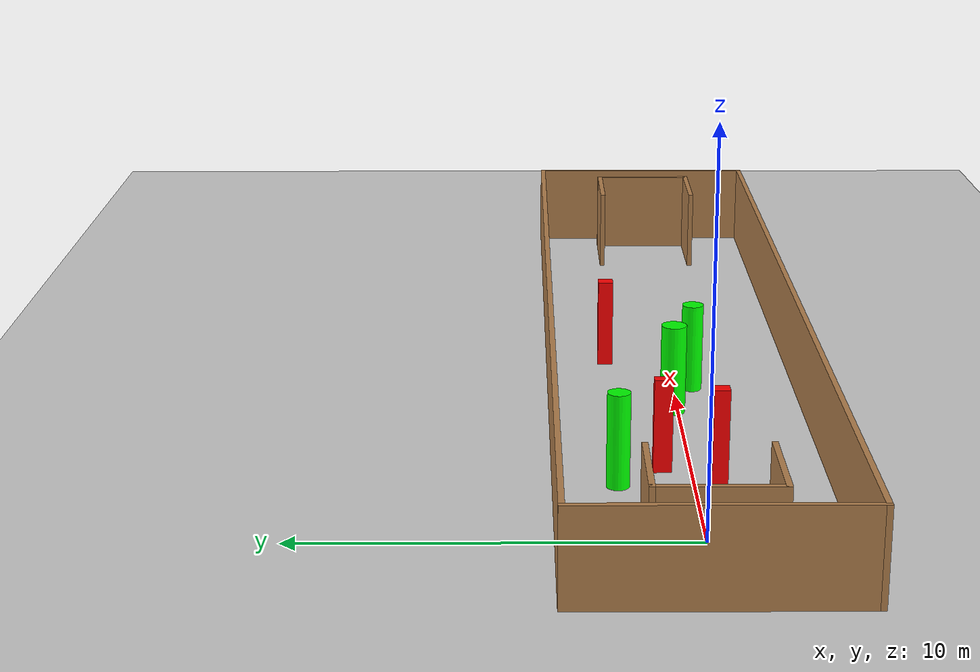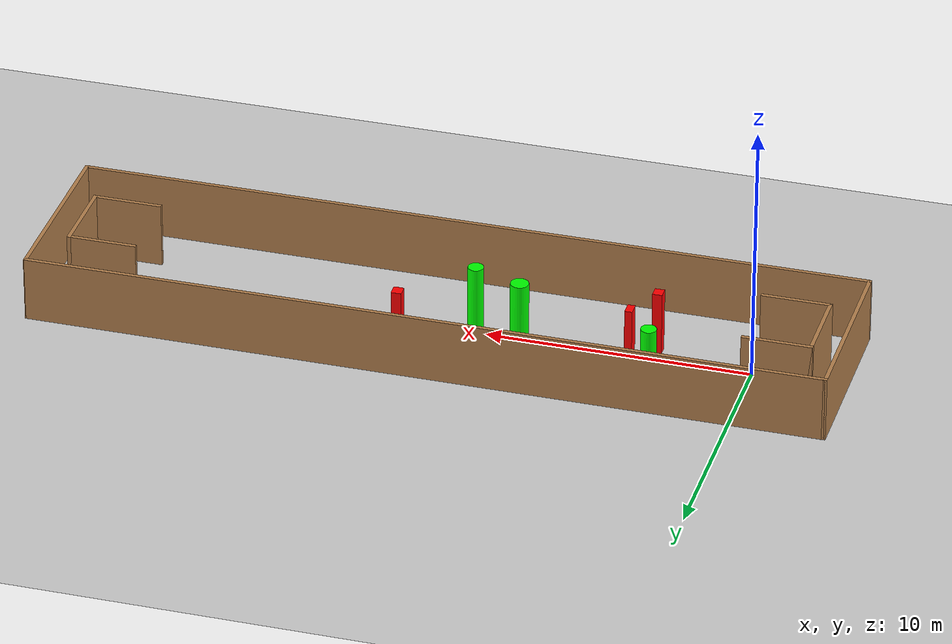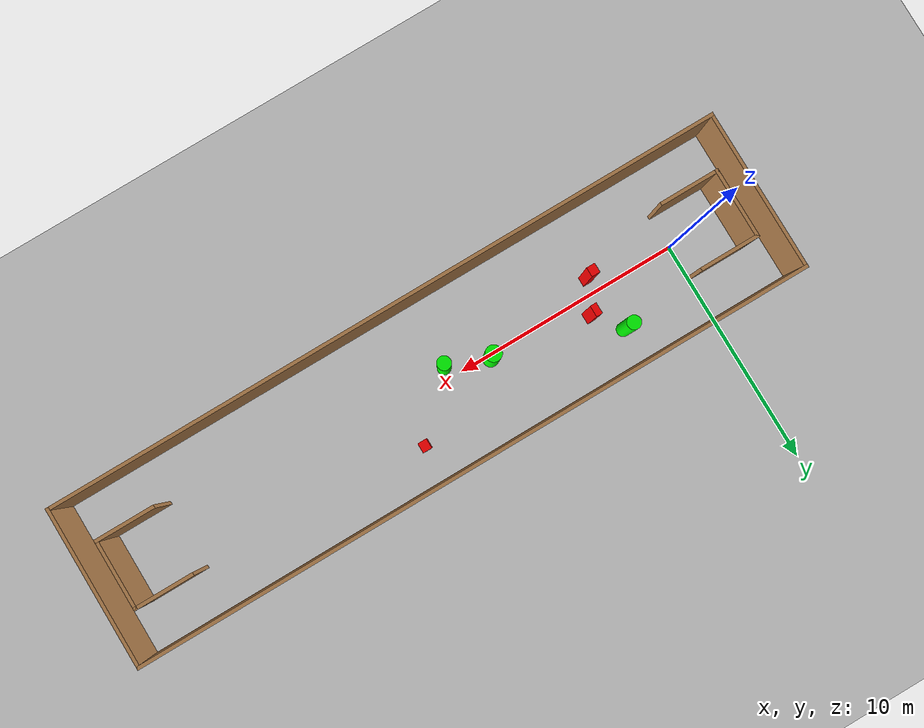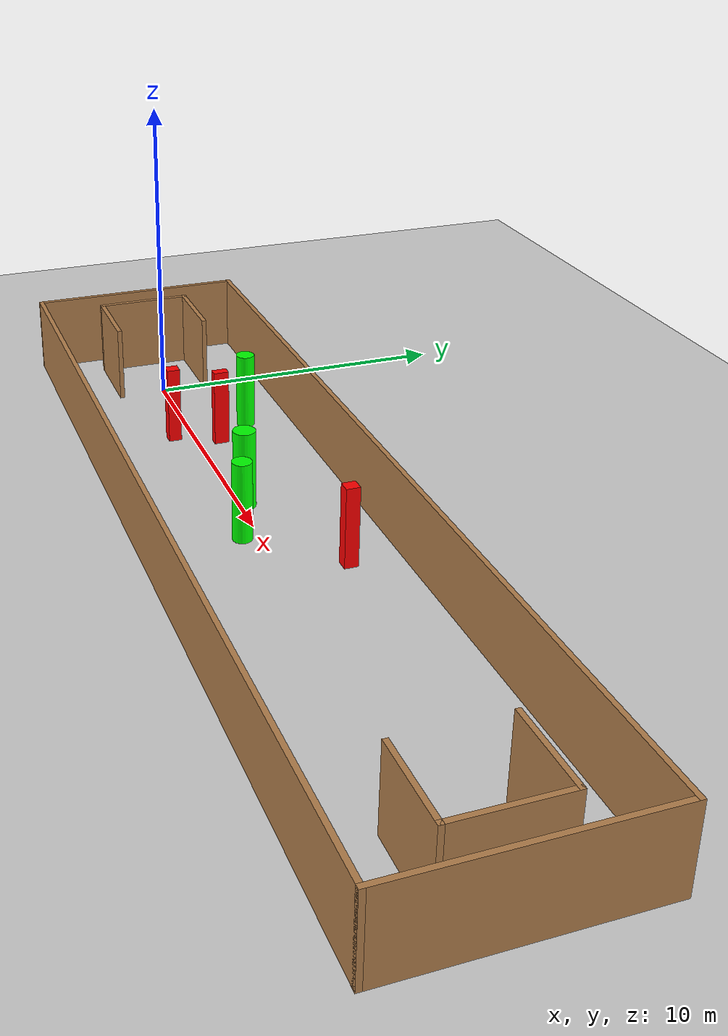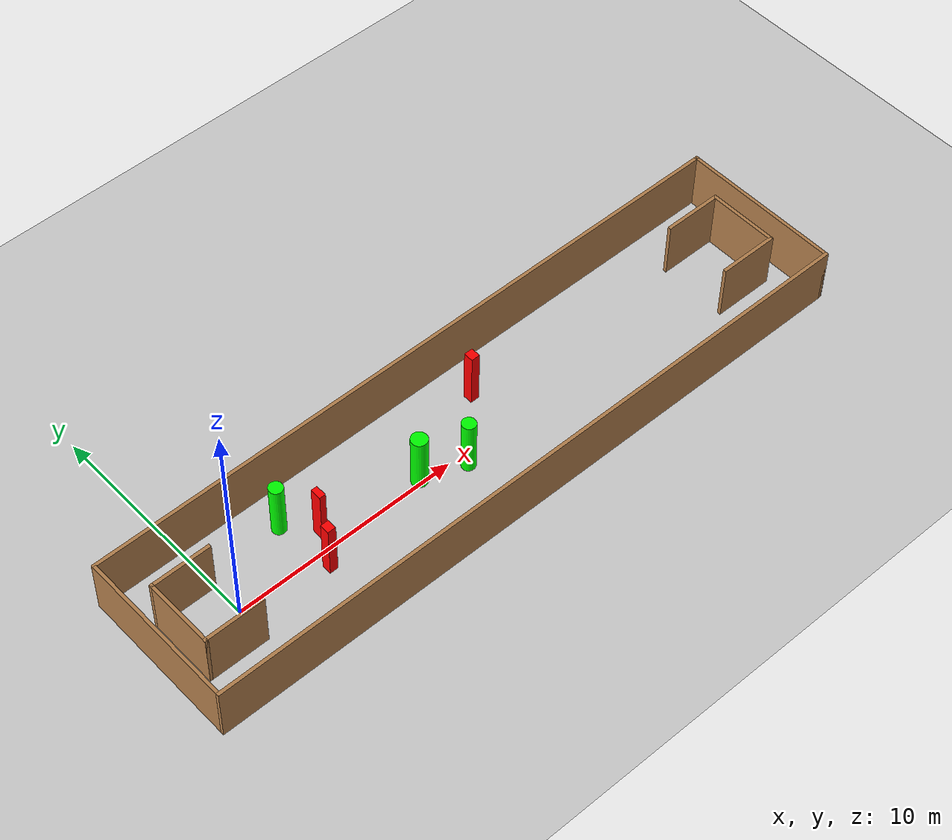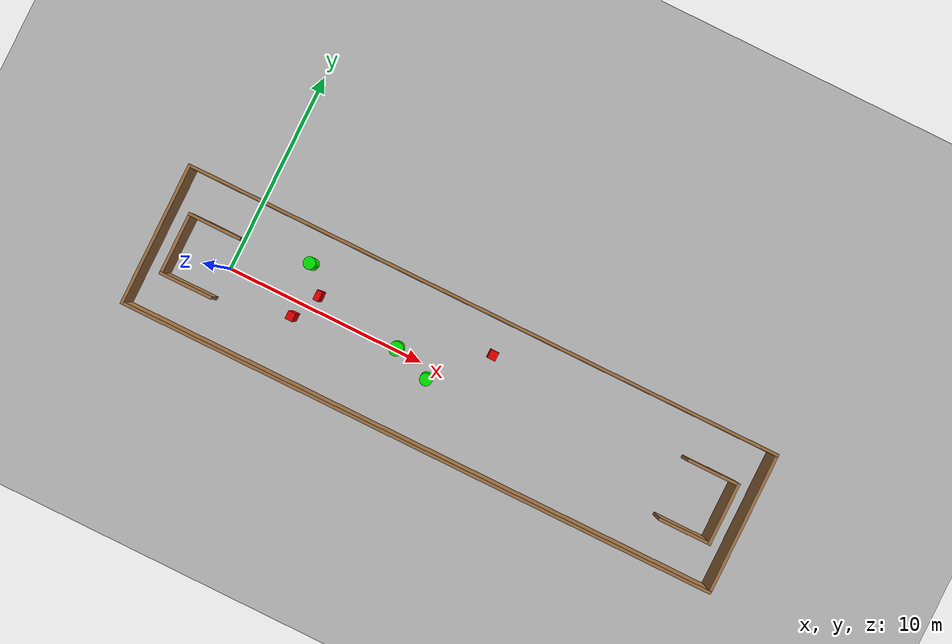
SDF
<sdf version="1.7">
 <world name="default">
  <light name="sun" type="directional">
   <pose>0 0 10 0 -0 0</pose>
   <diffuse>0.8 0.8 0.8 1</diffuse>
   <specular>0.2 0.2 0.2 1</specular>
   <attenuation>
    <range>1000</range>
    <constant>0.9</constant>
    <linear>0.01</linear>
    <quadratic>0.001</quadratic>
   </attenuation>
   <direction>-0.5 0.1 -0.9</direction>
   <spot><inner_angle>0</inner_angle><outer_angle>0</outer_angle><falloff>0</falloff></spot>
  </light>
  <model name="ground_plane">
   <static>1</static>
   <link name="link">
    <collision name="collision">
     <geometry><plane><normal>0 0 1</normal><size>100 100</size></plane></geometry>
     <surface>
      <contact><collide_bitmask>65535</collide_bitmask></contact>
      <friction><ode><mu>100</mu><mu2>50</mu2></ode></friction>
     </surface>
    </collision>
    <visual name="visual">
     <cast_shadows>0</cast_shadows>
     <geometry><plane><normal>0 0 1</normal><size>100 100</size></plane></geometry>
     <material>
      <script><uri>file://media/materials/scripts/gazebo.material</uri><name>Gazebo/Grey</name></script>
     </material>
    </visual>
   </link>
  </model>
  <gravity>0 0 -9.8</gravity>
  <magnetic_field>6e-06 2.3e-05 -4.2e-05</magnetic_field>
  <atmosphere type="adiabatic"/>
  <physics type="ode">
   <max_step_size>0.001</max_step_size>
   <real_time_factor>1</real_time_factor>
   <real_time_update_rate>1000</real_time_update_rate>
  </physics>
  <scene><ambient>0.4 0.4 0.4 1</ambient><background>0.7 0.7 0.7 1</background><shadows>1</shadows></scene>
  <spherical_coordinates>
   <surface_model>EARTH_WGS84</surface_model>
   <latitude_deg>0</latitude_deg>
   <longitude_deg>0</longitude_deg>
   <elevation>0</elevation>
   <heading_deg>0</heading_deg>
  </spherical_coordinates>
  <model name="my_base_walls">
   <link name="Wall_0">
    <collision name="Wall_0_Collision">
     <geometry><box><size>7.15 0.15 2.5</size></box></geometry>
     <pose>0 0 1.25 0 -0 0</pose>
    </collision>
    <visual name="Wall_0_Visual">
     <pose>0 0 1.25 0 -0 0</pose>
     <geometry><box><size>7.15 0.15 2.5</size></box></geometry>
     <material>
      <script><uri>file://media/materials/scripts/gazebo.material</uri><name>Gazebo/Wood</name></script>
      <ambient>1 1 1 1</ambient>
     </material>
     <meta><layer>0</layer></meta>
    </visual>
    <pose>-15 0 0 0 -0 1.5708</pose>
   </link>
   <link name="Wall_10">
    <collision name="Wall_10_Collision">
     <geometry><box><size>2.65 0.15 2.5</size></box></geometry>
     <pose>0 0 1.25 0 -0 0</pose>
    </collision>
    <visual name="Wall_10_Visual">
     <pose>0 0 1.25 0 -0 0</pose>
     <geometry><box><size>2.65 0.15 2.5</size></box></geometry>
     <material>
      <script><uri>file://media/materials/scripts/gazebo.material</uri><name>Gazebo/Wood</name></script>
      <ambient>1 1 1 1</ambient>
     </material>
     <meta><layer>0</layer></meta>
    </visual>
    <pose>-12.75 -1.5 0 0 -0 0</pose>
   </link>
   <link name="Wall_12">
    <collision name="Wall_12_Collision">
     <geometry><box><size>2.65 0.15 2.5</size></box></geometry>
     <pose>0 0 1.25 0 -0 0</pose>
    </collision>
    <visual name="Wall_12_Visual">
     <pose>0 0 1.25 0 -0 0</pose>
     <geometry><box><size>2.65 0.15 2.5</size></box></geometry>
     <material>
      <script><uri>file://media/materials/scripts/gazebo.material</uri><name>Gazebo/Wood</name></script>
      <ambient>1 1 1 1</ambient>
     </material>
     <meta><layer>0</layer></meta>
    </visual>
    <pose>-12.75 1.5 0 0 -0 0</pose>
   </link>
   <link name="Wall_14">
    <collision name="Wall_14_Collision">
     <geometry><box><size>3.15 0.15 2.5</size></box></geometry>
     <pose>0 0 1.25 0 -0 0</pose>
    </collision>
    <visual name="Wall_14_Visual">
     <pose>0 0 1.25 0 -0 0</pose>
     <geometry><box><size>3.15 0.15 2.5</size></box></geometry>
     <material>
      <script><uri>file://media/materials/scripts/gazebo.material</uri><name>Gazebo/Wood</name></script>
      <ambient>1 1 1 1</ambient>
     </material>
     <meta><layer>0</layer></meta>
    </visual>
    <pose>14 0 0 0 -0 -1.5708</pose>
   </link>
   <link name="Wall_15">
    <collision name="Wall_15_Collision">
     <geometry><box><size>2.65 0.15 2.5</size></box></geometry>
     <pose>0 0 1.25 0 -0 0</pose>
    </collision>
    <visual name="Wall_15_Visual">
     <pose>0 0 1.25 0 -0 0</pose>
     <geometry><box><size>2.65 0.15 2.5</size></box></geometry>
     <material>
      <script><uri>file://media/materials/scripts/gazebo.material</uri><name>Gazebo/Wood</name></script>
      <ambient>1 1 1 1</ambient>
     </material>
     <meta><layer>0</layer></meta>
    </visual>
    <pose>12.75 -1.5 0 0 -0 3.14159</pose>
   </link>
   <link name="Wall_17">
    <collision name="Wall_17_Collision">
     <geometry><box><size>2.65 0.15 2.5</size></box></geometry>
     <pose>0 0 1.25 0 -0 0</pose>
    </collision>
    <visual name="Wall_17_Visual">
     <pose>0 0 1.25 0 -0 0</pose>
     <geometry><box><size>2.65 0.15 2.5</size></box></geometry>
     <material>
      <script><uri>file://media/materials/scripts/gazebo.material</uri><name>Gazebo/Wood</name></script>
      <ambient>1 1 1 1</ambient>
     </material>
     <meta><layer>0</layer></meta>
    </visual>
    <pose>12.75 1.5 0 0 -0 3.14159</pose>
   </link>
   <link name="Wall_2">
    <collision name="Wall_2_Collision">
     <geometry><box><size>30.15 0.15 2.5</size></box></geometry>
     <pose>0 0 1.25 0 -0 0</pose>
    </collision>
    <visual name="Wall_2_Visual">
     <pose>0 0 1.25 0 -0 0</pose>
     <geometry><box><size>30.15 0.15 2.5</size></box></geometry>
     <material>
      <script><uri>file://media/materials/scripts/gazebo.material</uri><name>Gazebo/Wood</name></script>
      <ambient>1 1 1 1</ambient>
     </material>
     <meta><layer>0</layer></meta>
    </visual>
    <pose>-0 -3.5 0 0 -0 0</pose>
   </link>
   <link name="Wall_4">
    <collision name="Wall_4_Collision">
     <geometry><box><size>30.15 0.15 2.5</size></box></geometry>
     <pose>0 0 1.25 0 -0 0</pose>
    </collision>
    <visual name="Wall_4_Visual">
     <pose>0 0 1.25 0 -0 0</pose>
     <geometry><box><size>30.15 0.15 2.5</size></box></geometry>
     <material>
      <script><uri>file://media/materials/scripts/gazebo.material</uri><name>Gazebo/Wood</name></script>
      <ambient>1 1 1 1</ambient>
     </material>
     <meta><layer>0</layer></meta>
    </visual>
    <pose>-0 3.5 0 0 -0 0</pose>
   </link>
   <link name="Wall_6">
    <collision name="Wall_6_Collision">
     <geometry><box><size>7.15 0.15 2.5</size></box></geometry>
     <pose>0 0 1.25 0 -0 0</pose>
    </collision>
    <visual name="Wall_6_Visual">
     <pose>0 0 1.25 0 -0 0</pose>
     <geometry><box><size>7.15 0.15 2.5</size></box></geometry>
     <material>
      <script><uri>file://media/materials/scripts/gazebo.material</uri><name>Gazebo/Wood</name></script>
      <ambient>1 1 1 1</ambient>
     </material>
     <meta><layer>0</layer></meta>
    </visual>
    <pose>15 0 0 0 -0 -1.5708</pose>
   </link>
   <link name="Wall_9">
    <collision name="Wall_9_Collision">
     <geometry><box><size>3.15 0.15 2.5</size></box></geometry>
     <pose>0 0 1.25 0 -0 0</pose>
    </collision>
    <visual name="Wall_9_Visual">
     <pose>0 0 1.25 0 -0 0</pose>
     <geometry><box><size>3.15 0.15 2.5</size></box></geometry>
     <material>
      <script><uri>file://media/materials/scripts/gazebo.material</uri><name>Gazebo/Wood</name></script>
      <ambient>1 1 1 1</ambient>
     </material>
     <meta><layer>0</layer></meta>
    </visual>
    <pose>-14 0 0 0 -0 -1.5708</pose>
   </link>
   <static>1</static>
   <pose>11.5 0 0 0 -0 0</pose>
  </model>
  <model name="cylinder1">
   <static>1</static>
   <link name="link">
    <inertial>
     <mass>1</mass>
     <inertia><ixx>0.5</ixx><ixy>0</ixy><ixz>0</ixz><iyy>0.5</iyy><iyz>0</iyz><izz>1</izz></inertia>
    </inertial>
    <collision name="collision">
     <geometry><cylinder><radius>0.2973973266515352</radius><length>2.5</length></cylinder></geometry>
    </collision>
    <visual name="visual">
     <geometry><cylinder><radius>0.2973973266515352</radius><length>2.5</length></cylinder></geometry>
     <material>
      <ambient>0 1 0 1</ambient>
      <diffuse>0 1 0 1</diffuse>
      <specular>0.1 0.1 0.1 1</specular>
      <emissive>0 0 0 0</emissive>
     </material>
    </visual>
   </link>
   <pose>10.534177559851464 -0.5089106300833688 1.25 0 0 0</pose>
  </model>
  <model name="cylinder2">
   <static>1</static>
   <link name="link">
    <inertial>
     <mass>1</mass>
     <inertia><ixx>0.5</ixx><ixy>0</ixy><ixz>0</ixz><iyy>0.5</iyy><iyz>0</iyz><izz>1</izz></inertia>
    </inertial>
    <collision name="collision">
     <geometry><cylinder><radius>0.2973561895998973</radius><length>2.5</length></cylinder></geometry>
    </collision>
    <visual name="visual">
     <geometry><cylinder><radius>0.2973561895998973</radius><length>2.5</length></cylinder></geometry>
     <material>
      <ambient>0 1 0 1</ambient>
      <diffuse>0 1 0 1</diffuse>
      <specular>0.1 0.1 0.1 1</specular>
      <emissive>0 0 0 0</emissive>
     </material>
    </visual>
   </link>
   <pose>3.3936979091957493 1.9211953065213327 1.25 0 0 0</pose>
  </model>
  <model name="cylinder3">
   <static>1</static>
   <link name="link">
    <inertial>
     <mass>1</mass>
     <inertia><ixx>0.5</ixx><ixy>0</ixy><ixz>0</ixz><iyy>0.5</iyy><iyz>0</iyz><izz>1</izz></inertia>
    </inertial>
    <collision name="collision">
     <geometry><cylinder><radius>0.3463741135747091</radius><length>2.5</length></cylinder></geometry>
    </collision>
    <visual name="visual">
     <geometry><cylinder><radius>0.3463741135747091</radius><length>2.5</length></cylinder></geometry>
     <material>
      <ambient>0 1 0 1</ambient>
      <diffuse>0 1 0 1</diffuse>
      <specular>0.1 0.1 0.1 1</specular>
      <emissive>0 0 0 0</emissive>
     </material>
    </visual>
   </link>
   <pose>8.691808915730123 0.15656696475261267 1.25 0 0 0</pose>
  </model>
  <model name="box1">
   <static>1</static>
   <link name="link">
    <inertial>
     <mass>1</mass>
     <inertia><ixx>0.083</ixx><ixy>0</ixy><ixz>0</ixz><iyy>0.083</iyy><iyz>0</iyz><izz>0.083</izz></inertia>
    </inertial>
    <collision name="collision">
     <geometry><box><size>0.3865544176706607 0.4241766445535625 2.5</size></box></geometry>
    </collision>
    <visual name="visual">
     <geometry><box><size>0.3865544176706607 0.4241766445535625 2.5</size></box></geometry>
     <material>
      <ambient>1 0 0 1</ambient>
      <diffuse>1 0 0 1</diffuse>
      <specular>0.1 0.1 0.1 1</specular>
      <emissive>0 0 0 0</emissive>
     </material>
    </visual>
    <sensor name="my_contact" type="contact">
     <contact><collision>box_collision</collision><topic>__default_topic__</topic></contact>
    </sensor>
   </link>
   <pose>12.817867992394726 1.8517022135814383 1.25 0 0 0</pose>
  </model>
  <model name="box2">
   <static>1</static>
   <link name="link">
    <inertial>
     <mass>1</mass>
     <inertia><ixx>0.083</ixx><ixy>0</ixy><ixz>0</ixz><iyy>0.083</iyy><iyz>0</iyz><izz>0.083</izz></inertia>
    </inertial>
    <collision name="collision">
     <geometry><box><size>0.36947232662686214 0.4142658965267254 2.5</size></box></geometry>
    </collision>
    <visual name="visual">
     <geometry><box><size>0.36947232662686214 0.4142658965267254 2.5</size></box></geometry>
     <material>
      <ambient>1 0 0 1</ambient>
      <diffuse>1 0 0 1</diffuse>
      <specular>0.1 0.1 0.1 1</specular>
      <emissive>0 0 0 0</emissive>
     </material>
    </visual>
    <sensor name="my_contact" type="contact">
     <contact><collision>box_collision</collision><topic>__default_topic__</topic></contact>
    </sensor>
   </link>
   <pose>3.6857759769551883 -0.6449003764074277 1.25 0 0 0</pose>
  </model>
  <model name="box3">
   <static>1</static>
   <link name="link">
    <inertial>
     <mass>1</mass>
     <inertia><ixx>0.083</ixx><ixy>0</ixy><ixz>0</ixz><iyy>0.083</iyy><iyz>0</iyz><izz>0.083</izz></inertia>
    </inertial>
    <collision name="collision">
     <geometry><box><size>0.2777779980038721 0.48613783410091993 2.5</size></box></geometry>
    </collision>
    <visual name="visual">
     <geometry><box><size>0.2777779980038721 0.48613783410091993 2.5</size></box></geometry>
     <material>
      <ambient>1 0 0 1</ambient>
      <diffuse>1 0 0 1</diffuse>
      <specular>0.1 0.1 0.1 1</specular>
      <emissive>0 0 0 0</emissive>
     </material>
    </visual>
    <sensor name="my_contact" type="contact">
     <contact><collision>box_collision</collision><topic>__default_topic__</topic></contact>
    </sensor>
   </link>
   <pose>4.395145667339385 0.7461149414205437 1.25 0 0 0</pose>
  </model>
 </world>
</sdf>
